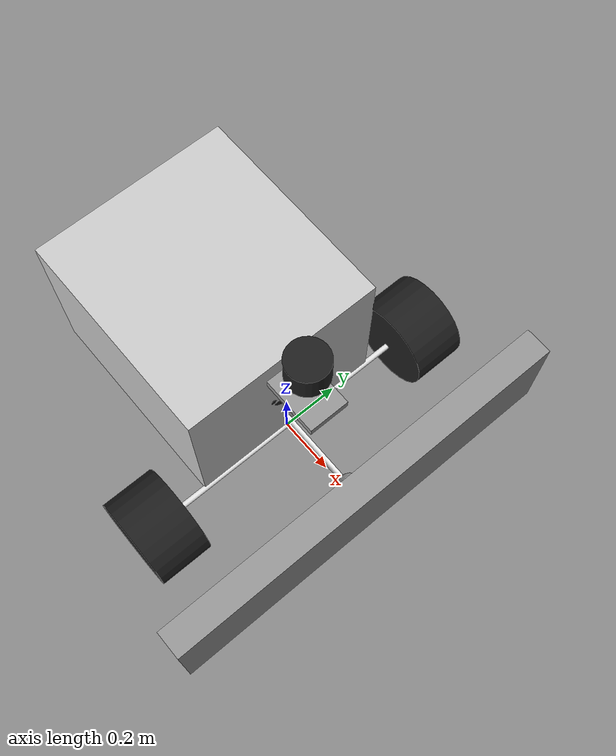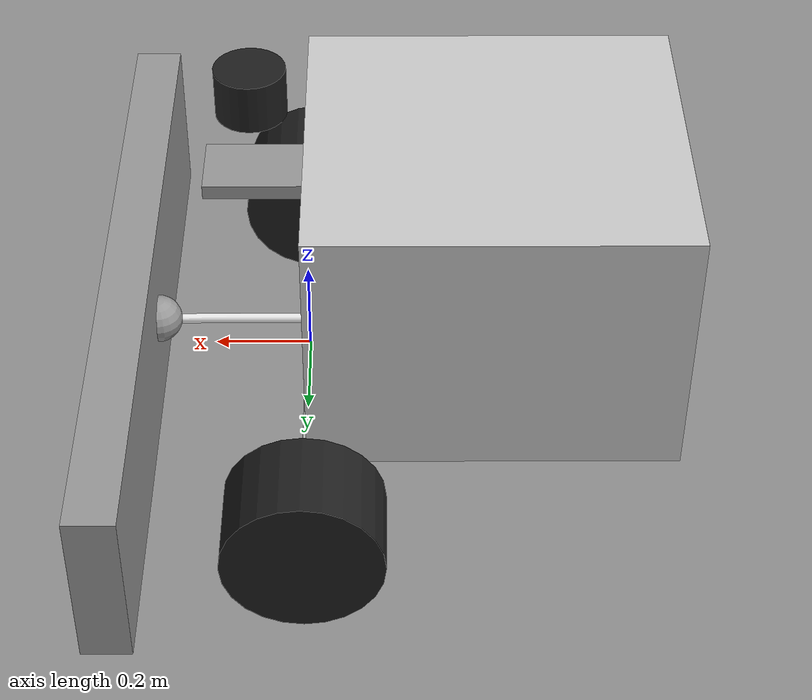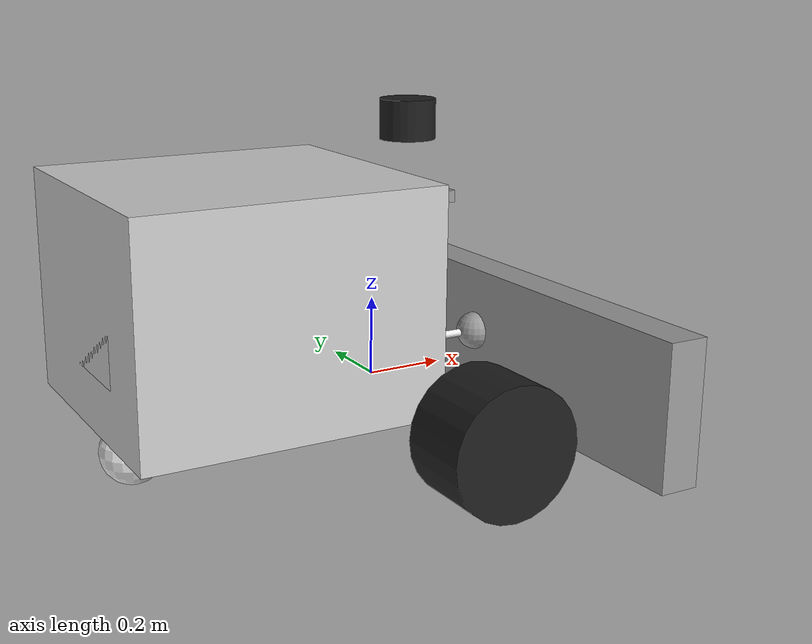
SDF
<sdf version='1.9'>
  <model name='robot'>
    <link name='base_link'>
      <inertial>
        <pose>-0.1980982567353408 0.1103011093502377 0.07124564183835187 0 0 0</pose>
        <mass>6.3099999999999996</mass>
        <inertia>
          <ixx>0.95956351381405181</ixx>
          <ixy>-0.0073763866877971686</ixy>
          <ixz>0.085782947702060186</ixz>
          <iyy>1.067313181669308</iyy>
          <iyz>0.2110589667194929</iyz>
          <izz>1.1398375236397249</izz>
        </inertia>
      </inertial>
      <collision name='base_link_fixed_joint_lump__chassis_collision'>
        <pose>-0.375 0 0.268 0 0 0</pose>
        <geometry>
          <box>
            <size>0.75 0.696 0.556</size>
          </box>
        </geometry>
        <surface>
          <contact>
            <ode/>
          </contact>
          <friction>
            <ode/>
          </friction>
        </surface>
      </collision>
      <collision name='base_link_fixed_joint_lump__battery_pack_collision_1'>
        <pose>-0.5625 0 0.268 0 0 0</pose>
        <geometry>
          <box>
            <size>0.375 0.348 0.278</size>
          </box>
        </geometry>
        <surface>
          <contact>
            <ode/>
          </contact>
          <friction>
            <ode/>
          </friction>
        </surface>
      </collision>
      <collision name='base_link_fixed_joint_lump__blade_bar_collision_2'>
        <pose>0.135 0 0.06800000000000002 0 1.570796326794897 0</pose>
        <geometry>
          <cylinder>
            <length>0.27000000000000002</length>
            <radius>0.01</radius>
          </cylinder>
        </geometry>
        <surface>
          <contact>
            <ode/>
          </contact>
          <friction>
            <ode/>
          </friction>
        </surface>
      </collision>
      <collision name='base_link_fixed_joint_lump__snowplow_blade_link_collision_3'>
        <pose>0.32 0 0.06800000000000005 0 -2.029307271513905e-17 0</pose>
        <geometry>
          <sphere>
            <radius>0.050000000000000003</radius>
          </sphere>
        </geometry>
        <surface>
          <contact>
            <ode/>
          </contact>
          <friction>
            <ode/>
          </friction>
        </surface>
      </collision>
      <collision name='base_link_fixed_joint_lump__snowplow_blade_link_collision_4'>
        <pose>0.37 0 0.05800000000000006 0 -2.029307271513905e-17 0</pose>
        <geometry>
          <box>
            <size>0.1 1.5 0.356</size>
          </box>
        </geometry>
        <surface>
          <contact>
            <ode/>
          </contact>
          <friction>
            <ode/>
          </friction>
        </surface>
      </collision>
      <collision name='base_link_fixed_joint_lump__caster_wheel_collision_5'>
        <pose>-0.65 0 -0.09 0 0 0</pose>
        <geometry>
          <sphere>
            <radius>0.080000000000000002</radius>
          </sphere>
        </geometry>
        <surface>
          <contact>
            <ode/>
          </contact>
          <friction>
            <ode>
              <mu>0.001</mu>
              <mu2>0.001</mu2>
            </ode>
          </friction>
        </surface>
      </collision>
      <collision name='base_link_fixed_joint_lump__laser_frame_collision_6'>
        <pose>0.1 0 0.65 0 0 0</pose>
        <geometry>
          <cylinder>
            <length>0.040000000000000001</length>
            <radius>0.050000000000000003</radius>
          </cylinder>
        </geometry>
        <surface>
          <contact>
            <ode/>
          </contact>
          <friction>
            <ode/>
          </friction>
        </surface>
      </collision>
      <collision name='base_link_fixed_joint_lump__lidar_holder_collision_7'>
        <pose>0 0 0.456 0 0 0</pose>
        <geometry>
          <box>
            <size>0.25 0.14 0.03</size>
          </box>
        </geometry>
        <surface>
          <contact>
            <ode/>
          </contact>
          <friction>
            <ode/>
          </friction>
        </surface>
      </collision>
      <collision name='base_link_fixed_joint_lump__wheel_bar_collision_8'>
        <pose>0 0 0 1.570796326794896 0 0</pose>
        <geometry>
          <cylinder>
            <length>0.89599999999999991</length>
            <radius>0.01</radius>
          </cylinder>
        </geometry>
        <surface>
          <contact>
            <ode/>
          </contact>
          <friction>
            <ode/>
          </friction>
        </surface>
      </collision>
      <visual name='base_link_fixed_joint_lump__chassis_visual'>
        <pose>-0.375 0 0.268 0 0 0</pose>
        <geometry>
          <box>
            <size>0.75 0.696 0.556</size>
          </box>
        </geometry>
        <material>
          <script>
            <name>Gazebo/LightGrey</name>
            <uri>file://media/materials/scripts/gazebo.material</uri>
          </script>
          <diffuse>1 1 1 1</diffuse>
          <ambient>1 1 1 1</ambient>
        </material>
      </visual>
      <visual name='base_link_fixed_joint_lump__battery_pack_visual_1'>
        <pose>-0.5625 0 0.268 0 0 0</pose>
        <geometry>
          <box>
            <size>0.375 0.348 0.278</size>
          </box>
        </geometry>
        <material>
          <script>
            <name>Gazebo/LightGrey</name>
            <uri>file://media/materials/scripts/gazebo.material</uri>
          </script>
          <diffuse>1 1 1 1</diffuse>
          <ambient>1 1 1 1</ambient>
        </material>
      </visual>
      <visual name='base_link_fixed_joint_lump__blade_bar_visual_2'>
        <pose>0.135 0 0.06800000000000002 0 1.570796326794897 0</pose>
        <geometry>
          <cylinder>
            <length>0.27000000000000002</length>
            <radius>0.01</radius>
          </cylinder>
        </geometry>
        <material>
          <script>
            <name>Gazebo/white</name>
            <uri>file://media/materials/scripts/gazebo.material</uri>
          </script>
          <diffuse>1 1 1 1</diffuse>
          <ambient>1 1 1 1</ambient>
        </material>
      </visual>
      <visual name='base_link_fixed_joint_lump__snowplow_blade_link_visual_3'>
        <pose>0.32 0 0.06800000000000005 0 -2.029307271513905e-17 0</pose>
        <geometry>
          <sphere>
            <radius>0.050000000000000003</radius>
          </sphere>
        </geometry>
        <material>
          <script>
            <name>Gazebo/Grey</name>
            <uri>file://media/materials/scripts/gazebo.material</uri>
          </script>
          <diffuse>0.625 0.625 0.625 1</diffuse>
          <ambient>0.625 0.625 0.625 1</ambient>
        </material>
      </visual>
      <visual name='base_link_fixed_joint_lump__snowplow_blade_link_visual_4'>
        <pose>0.37 0 0.05800000000000006 0 -2.029307271513905e-17 0</pose>
        <geometry>
          <box>
            <size>0.1 1.5 0.356</size>
          </box>
        </geometry>
        <material>
          <script>
            <name>Gazebo/Grey</name>
            <uri>file://media/materials/scripts/gazebo.material</uri>
          </script>
          <diffuse>0 0 0 1</diffuse>
          <ambient>0 0 0 1</ambient>
        </material>
      </visual>
      <visual name='base_link_fixed_joint_lump__caster_wheel_visual_5'>
        <pose>-0.65 0 -0.09 0 0 0</pose>
        <geometry>
          <sphere>
            <radius>0.080000000000000002</radius>
          </sphere>
        </geometry>
        <material>
          <script>
            <name>Gazebo/White</name>
            <uri>file://media/materials/scripts/gazebo.material</uri>
          </script>
          <diffuse>1 1 1 1</diffuse>
          <ambient>1 1 1 1</ambient>
        </material>
      </visual>
      <visual name='base_link_fixed_joint_lump__face_link_visual_6'>
        <pose>0 0.05 0.278 0 1.570796326794897 0</pose>
        <geometry>
          <cylinder>
            <length>0.002</length>
            <radius>0.01</radius>
          </cylinder>
        </geometry>
        <material>
          <script>
            <name>Gazebo/Black</name>
            <uri>file://media/materials/scripts/gazebo.material</uri>
          </script>
          <diffuse>0 0 0 1</diffuse>
          <ambient>0 0 0 1</ambient>
        </material>
      </visual>
      <visual name='base_link_fixed_joint_lump__face_link_visual_7'>
        <pose>0 -0.05 0.278 0 1.570796326794897 0</pose>
        <geometry>
          <cylinder>
            <length>0.002</length>
            <radius>0.01</radius>
          </cylinder>
        </geometry>
        <material>
          <script>
            <name>Gazebo/Black</name>
            <uri>file://media/materials/scripts/gazebo.material</uri>
          </script>
          <diffuse>0 0 0 1</diffuse>
          <ambient>0 0 0 1</ambient>
        </material>
      </visual>
      <visual name='base_link_fixed_joint_lump__face_link_visual_8'>
        <pose>-0.011 0 0.268 0 1.499999999999999 0</pose>
        <geometry>
          <cylinder>
            <length>0.02</length>
            <radius>0.050000000000000003</radius>
          </cylinder>
        </geometry>
        <material>
          <script>
            <name>Gazebo/Black</name>
            <uri>file://media/materials/scripts/gazebo.material</uri>
          </script>
          <diffuse>0 0 0 1</diffuse>
          <ambient>0 0 0 1</ambient>
        </material>
      </visual>
      <visual name='base_link_fixed_joint_lump__gps_link_visual_9'>
        <pose>-0.375 0 0.268 0 0.18 0</pose>
        <geometry>
          <box>
            <size>0.01 0.01 0.01</size>
          </box>
        </geometry>
        <material>
          <diffuse>0 0 0 1</diffuse>
          <ambient>0 0 0 1</ambient>
        </material>
      </visual>
      <visual name='base_link_fixed_joint_lump__imu_link_visual_10'>
        <pose>-0.375 0 0.268 0 0.18 0</pose>
        <geometry>
          <box>
            <size>0.07 0.03 0.03</size>
          </box>
        </geometry>
        <material>
          <diffuse>0 0 0 1</diffuse>
          <ambient>0 0 0 1</ambient>
        </material>
      </visual>
      <visual name='base_link_fixed_joint_lump__imu_link_visual_11'>
        <pose>-0.3839514786712912 0 0.2188078153605939 0 0.18 0</pose>
        <geometry>
          <cylinder>
            <length>0.10000000000000001</length>
            <radius>0.002</radius>
          </cylinder>
        </geometry>
        <material>
          <diffuse>0 0 0 1</diffuse>
          <ambient>0 0 0 1</ambient>
        </material>
      </visual>
      <visual name='base_link_fixed_joint_lump__laser_frame_visual_12'>
        <pose>0.1 0 0.65 0 0 0</pose>
        <geometry>
          <cylinder>
            <length>0.040000000000000001</length>
            <radius>0.050000000000000003</radius>
          </cylinder>
        </geometry>
        <material>
          <script>
            <name>Gazebo/Black</name>
            <uri>file://media/materials/scripts/gazebo.material</uri>
          </script>
          <diffuse>0 0 0 1</diffuse>
          <ambient>0 0 0 1</ambient>
        </material>
      </visual>
      <visual name='base_link_fixed_joint_lump__laser_frame_visual_13'>
        <pose>0.1 0 0.65 0 0 0</pose>
        <geometry>
          <cylinder>
            <length>0.10000000000000001</length>
            <radius>0.070000000000000007</radius>
          </cylinder>
        </geometry>
        <material>
          <script>
            <name>Gazebo/Black</name>
            <uri>file://media/materials/scripts/gazebo.material</uri>
          </script>
          <diffuse>0 0 0 1</diffuse>
          <ambient>0 0 0 1</ambient>
        </material>
      </visual>
      <visual name='base_link_fixed_joint_lump__lidar_holder_visual_14'>
        <pose>0 0 0.456 0 0 0</pose>
        <geometry>
          <box>
            <size>0.4 0.14 0.03</size>
          </box>
        </geometry>
        <material>
          <script>
            <name>Gazebo/Grey</name>
            <uri>file://media/materials/scripts/gazebo.material</uri>
          </script>
          <diffuse>0.625 0.625 0.625 1</diffuse>
          <ambient>0.625 0.625 0.625 1</ambient>
        </material>
      </visual>
      <visual name='base_link_fixed_joint_lump__wheel_bar_visual_15'>
        <pose>0 0 0 1.570796326794896 0 0</pose>
        <geometry>
          <cylinder>
            <length>0.89599999999999991</length>
            <radius>0.01</radius>
          </cylinder>
        </geometry>
        <material>
          <script>
            <name>Gazebo/white</name>
            <uri>file://media/materials/scripts/gazebo.material</uri>
          </script>
          <diffuse>1 1 1 1</diffuse>
          <ambient>1 1 1 1</ambient>
        </material>
      </visual>
      <sensor name='snowplow_gps' type='navsat'>
        <always_on>true</always_on>
        <update_rate>1</update_rate>
        <topic>gps/fix</topic>
        <pose>-0.375 0 0.268 0 0.18 0</pose>
        <ignition_frame_id>gps_link</ignition_frame_id>
      </sensor>
      <sensor name='laser' type='gpu_lidar'>
        <always_on>true</always_on>
        <visualize>true</visualize>
        <update_rate>10</update_rate>
        <lidar>
          <scan>
            <horizontal>
              <resolution>1</resolution>
              <samples>360</samples>
              <min_angle>0</min_angle>
              <max_angle>3.1400000000000001</max_angle>
            </horizontal>
          </scan>
          <range>
            <min>0.20000000000000001</min>
            <max>10</max>
          </range>
          <noise>
            <type>gaussian</type>
            <mean>0</mean>
            <stddev>0.01</stddev>
          </noise>
        </lidar>
        <plugin name='laser_controller' filename='libgazebo_ros_ray_sensor.so'>
          <ros>
            <argument>~/out:=scan</argument>
          </ros>
          <output_type>sensor_msgs/LaserScan</output_type>
          <frame_name>laser_frame</frame_name>
        </plugin>
        <pose>0.1 0 0.65 0 -0 0</pose>
        <gz_frame_id>laser_frame</gz_frame_id>
      </sensor>
    </link>
    <joint name='left_wheel_joint' type='revolute'>
      <pose relative_to='base_link'>0 0.548 0 -1.570796326794896 0 0</pose>
      <parent>base_link</parent>
      <child>left_wheel</child>
      <axis>
        <xyz>0 0 1</xyz>
        <limit>
          <lower>-10000000000000000</lower>
          <upper>10000000000000000</upper>
        </limit>
        <dynamics>
          <spring_reference>0</spring_reference>
          <spring_stiffness>0</spring_stiffness>
        </dynamics>
      </axis>
    </joint>
    <link name='left_wheel'>
      <pose relative_to='left_wheel_joint'>0 0 0 0 0 0</pose>
      <inertial>
        <pose>0 0 0 0 0 0</pose>
        <mass>1</mass>
        <inertia>
          <ixx>0.0094083333333333328</ixx>
          <ixy>0</ixy>
          <ixz>0</ixz>
          <iyy>0.0094083333333333328</iyy>
          <iyz>0</iyz>
          <izz>0.012800000000000001</izz>
        </inertia>
      </inertial>
      <collision name='left_wheel_collision'>
        <pose>0 0 0 0 0 0</pose>
        <geometry>
          <sphere>
            <radius>0.16</radius>
          </sphere>
        </geometry>
        <surface>
          <contact>
            <ode/>
          </contact>
          <friction>
            <ode/>
          </friction>
        </surface>
      </collision>
      <visual name='left_wheel_visual'>
        <pose>0 0 0 0 0 0</pose>
        <geometry>
          <cylinder>
            <length>0.19</length>
            <radius>0.16</radius>
          </cylinder>
        </geometry>
        <material>
          <script>
            <name>Gazebo/Black</name>
            <uri>file://media/materials/scripts/gazebo.material</uri>
          </script>
          <diffuse>0 0 0 1</diffuse>
          <ambient>0 0 0 1</ambient>
        </material>
      </visual>
    </link>
    <joint name='right_wheel_joint' type='revolute'>
      <pose relative_to='base_link'>0 -0.548 0 1.570796326794896 0 0</pose>
      <parent>base_link</parent>
      <child>right_wheel</child>
      <axis>
        <xyz>0 0 -1</xyz>
        <limit>
          <lower>-10000000000000000</lower>
          <upper>10000000000000000</upper>
        </limit>
        <dynamics>
          <spring_reference>0</spring_reference>
          <spring_stiffness>0</spring_stiffness>
        </dynamics>
      </axis>
    </joint>
    <link name='right_wheel'>
      <pose relative_to='right_wheel_joint'>0 0 0 0 0 0</pose>
      <inertial>
        <pose>0 0 0 0 0 0</pose>
        <mass>1</mass>
        <inertia>
          <ixx>0.0094083333333333328</ixx>
          <ixy>0</ixy>
          <ixz>0</ixz>
          <iyy>0.0094083333333333328</iyy>
          <iyz>0</iyz>
          <izz>0.012800000000000001</izz>
        </inertia>
      </inertial>
      <collision name='right_wheel_collision'>
        <pose>0 0 0 0 0 0</pose>
        <geometry>
          <sphere>
            <radius>0.16</radius>
          </sphere>
        </geometry>
        <surface>
          <contact>
            <ode/>
          </contact>
          <friction>
            <ode/>
          </friction>
        </surface>
      </collision>
      <visual name='right_wheel_visual'>
        <pose>0 0 0 0 0 0</pose>
        <geometry>
          <cylinder>
            <length>0.19</length>
            <radius>0.16</radius>
          </cylinder>
        </geometry>
        <material>
          <script>
            <name>Gazebo/Black</name>
            <uri>file://media/materials/scripts/gazebo.material</uri>
          </script>
          <diffuse>0 0 0 1</diffuse>
          <ambient>0 0 0 1</ambient>
        </material>
      </visual>
    </link>
    <plugin name='gz_ros2_control::GazeboSimROS2ControlPlugin' filename='libgz_ros2_control-system.so'>
      <parameters>/home/roverpc/ros-workspace/install/snowplow/share/snowplow/config/my_controllers.yaml</parameters>
    </plugin>
    <plugin name='motor_controller' filename='libmotor_controller.so'>
      <parameters>/home/roverpc/ros-workspace/install/snowplow/share/snowplow/config/my_controllers.yaml</parameters>
    </plugin>
    <frame name='base_footprint_joint' attached_to='base_link'>
      <pose>0 0 0 0 -0 0</pose>
    </frame>
    <frame name='base_footprint' attached_to='base_footprint_joint'/>
    <frame name='battery_joint' attached_to='chassis'>
      <pose>-0.5625 0 0.278 0 -0 0</pose>
    </frame>
    <frame name='battery_pack' attached_to='battery_joint'/>
    <frame name='blade_joint' attached_to='blade_bar'>
      <pose>0 0 0.185 0 -1.5708 0</pose>
    </frame>
    <frame name='snowplow_blade_link' attached_to='blade_joint'/>
    <frame name='blade_bar_joint' attached_to='chassis'>
      <pose>0.135 0 0.078 0 1.5708 0</pose>
    </frame>
    <frame name='blade_bar' attached_to='blade_bar_joint'/>
    <frame name='caster_wheel_joint' attached_to='chassis'>
      <pose>-0.65 0 -0.08 0 -0 0</pose>
    </frame>
    <frame name='caster_wheel' attached_to='caster_wheel_joint'/>
    <frame name='face_joint' attached_to='chassis'>
      <pose>0 0 0.278 0 -0 0</pose>
    </frame>
    <frame name='face_link' attached_to='face_joint'/>
    <frame name='gps_joint' attached_to='chassis'>
      <pose>-0.375 0 0.278 0 0.18 0</pose>
    </frame>
    <frame name='gps_link' attached_to='gps_joint'/>
    <frame name='imu_joint' attached_to='chassis'>
      <pose>-0.375 0 0.278 0 0.18 0</pose>
    </frame>
    <frame name='imu_link' attached_to='imu_joint'/>
    <frame name='laser_joint' attached_to='chassis'>
      <pose>0.1 0 0.66 0 -0 0</pose>
    </frame>
    <frame name='laser_frame' attached_to='laser_joint'/>
    <frame name='mount_joint' attached_to='chassis'>
      <pose>0 0 0.466 0 -0 0</pose>
    </frame>
    <frame name='lidar_holder' attached_to='mount_joint'/>
    <frame name='chassis_joint' attached_to='base_link'>
      <pose>0 0 -0.01 0 -0 0</pose>
    </frame>
    <frame name='chassis' attached_to='chassis_joint'/>
    <frame name='wheel_joint' attached_to='base_link'>
      <pose>0 0 0 1.5708 -0 0</pose>
    </frame>
    <frame name='wheel_bar' attached_to='wheel_joint'/>
  </model>
</sdf>
